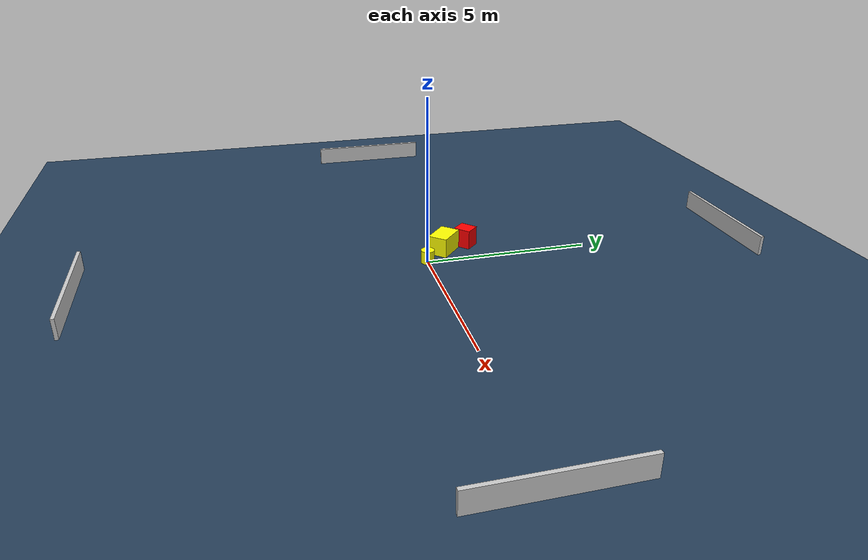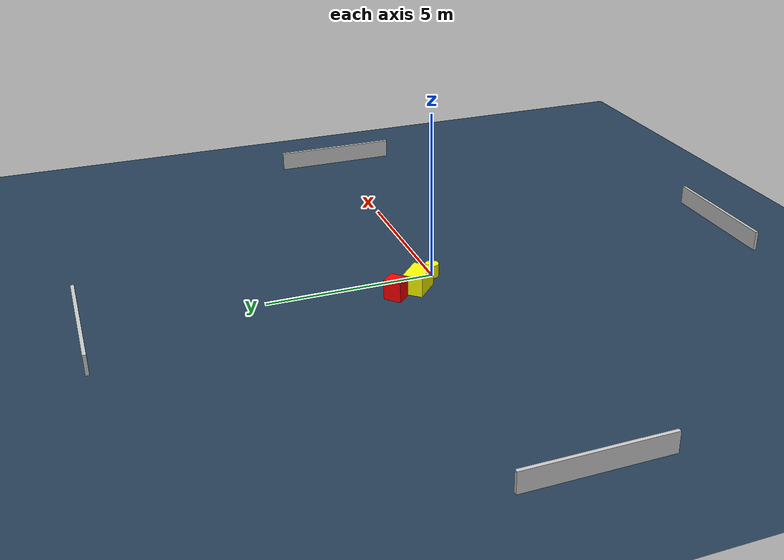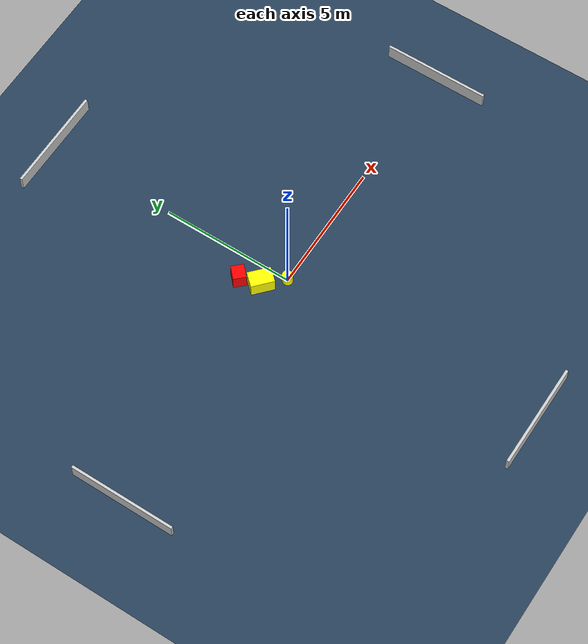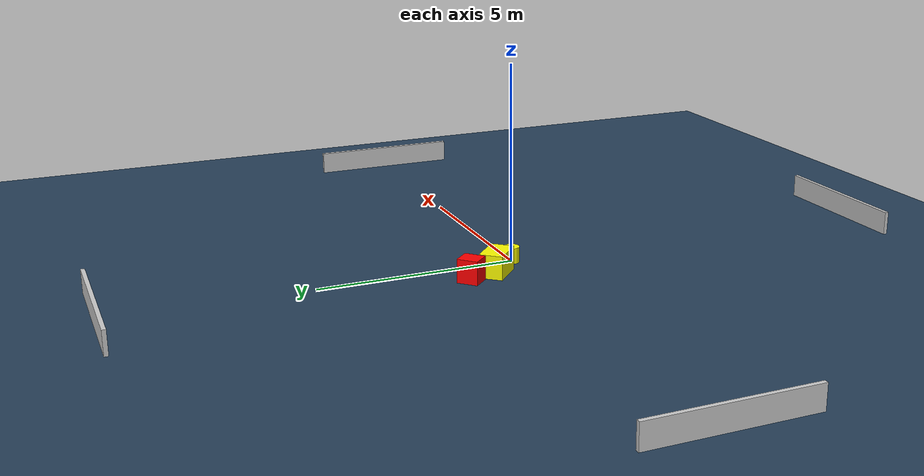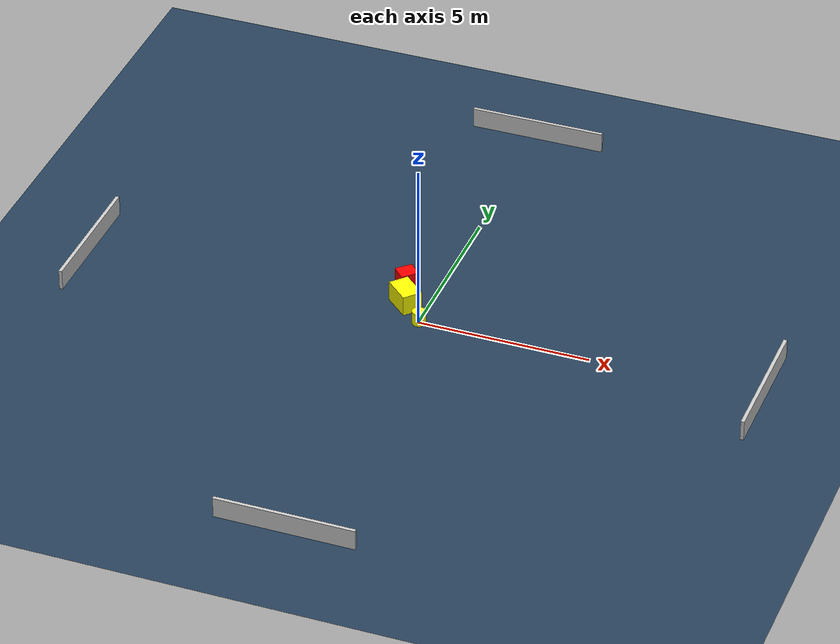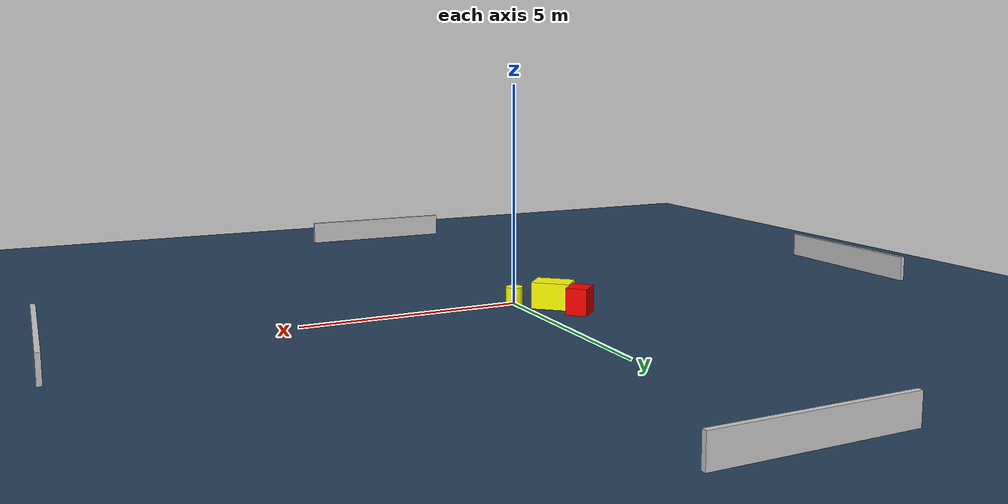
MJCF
<?xml version="1.0" ?>
<mujoco model="generated_environment">
  <option timestep="0.01" integrator="RK4" cone="elliptic"/>
  <default>
    <geom density="1"/>
  </default>
  <asset>
    <texture builtin="gradient" height="3072" name="skybox" rgb1="0.3 0.5 0.7" rgb2="0 0 0" type="skybox" width="512"/>
    <texture builtin="checker" height="300" name="groundplane" rgb1="0.2 0.3 0.4" rgb2="0.1 0.2 0.3" type="2d" width="300"/>
    <material name="groundplane" reflectance="0.2" texrepeat="5 5" texture="groundplane"/>
  </asset>
  <worldbody>
    <light dir="0 0 -1" directional="true" pos="0 0 1.5"/>
    <geom condim="3" friction="0.5 0.005 0.001" material="groundplane" name="floor" pos="0 0 0" size="0 0 0.05" type="plane"/>
    <body name="walls">
      <geom name="wall_1" condim="4" pos="-10.0 0.0 0.3" rgba="0.800000011920929 0.800000011920929 0.800000011920929 1.0" size="0.05 2.0 0.3" type="box"/>
      <geom name="wall_2" condim="4" pos="10.0 0.0 0.3" rgba="0.800000011920929 0.800000011920929 0.800000011920929 1.0" size="0.05 2.0 0.3" type="box"/>
      <geom name="wall_3" condim="4" pos="0.0 -10.0 0.3" rgba="0.800000011920929 0.800000011920929 0.800000011920929 1.0" size="2.0 0.05 0.3" type="box"/>
      <geom name="wall_4" condim="4" pos="0.0 10.0 0.3" rgba="0.800000011920929 0.800000011920929 0.800000011920929 1.0" size="2.0 0.05 0.3" type="box"/>
    </body>
    <body name="robot">
      <joint name="joint_x" type="slide" pos="0 0 0" axis="1 0 0"/>
      <joint name="joint_y" type="slide" pos="0 0 0" axis="0 1 0"/>
      <geom name="robot" type="cylinder" pos="0.0 0.0 0.2" size="0.2 0.2 0.0" mass="5.0" friction="1.0 0.005 0.0001" condim="4" rgba="1.0 1.0 0.0 1.0"/>
    </body>
    <body name="obstacle_1_movable">
      <geom name="obstacle_1_movable" condim="4" pos="-0.6532890071674454 0.6788609328206874 0.3" euler="0 0 137.8200062945078" friction="0.0 0.005 0.001" rgba="1.0 1.0 0.0 1.0" size="0.436926462546106 0.29634980169943825 0.3" type="box" mass="0.1"/>
      <joint type="free"/>
    </body>
    <body name="obstacle_2_static">
      <geom name="obstacle_2_static" condim="4" pos="-0.9042706365710591 1.4458232830267654 0.3" euler="0 0 223.52583494229197" friction="0.0 0.005 0.001" rgba="1.0 0.0 0.0 1.0" size="0.2652969187698473 0.23977302914706666 0.3" type="box"/>
    </body>
  </worldbody>
  <actuator>
    <motor name="actuator_x" joint="joint_x" gear="1" ctrlrange="-1 1"/>
    <motor name="actuator_y" joint="joint_y" gear="1" ctrlrange="-1 1"/>
  </actuator>
</mujoco>
